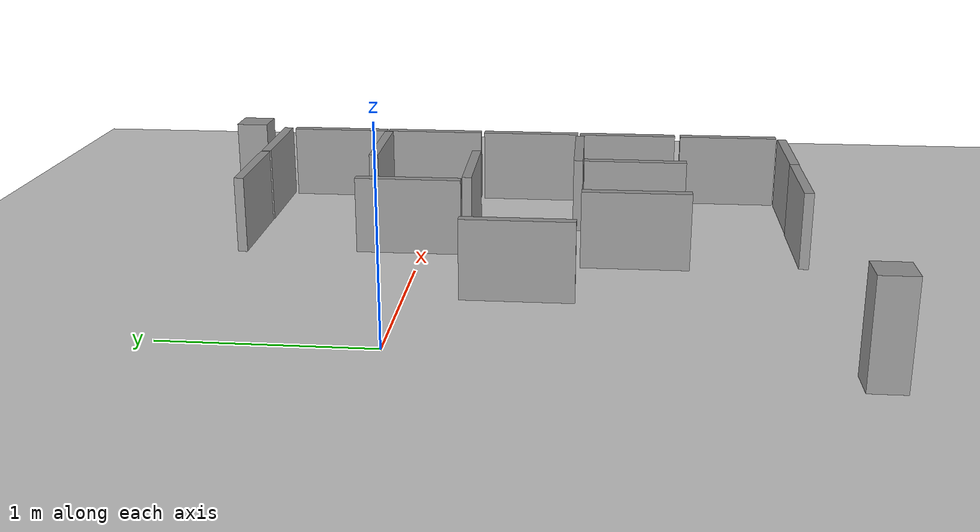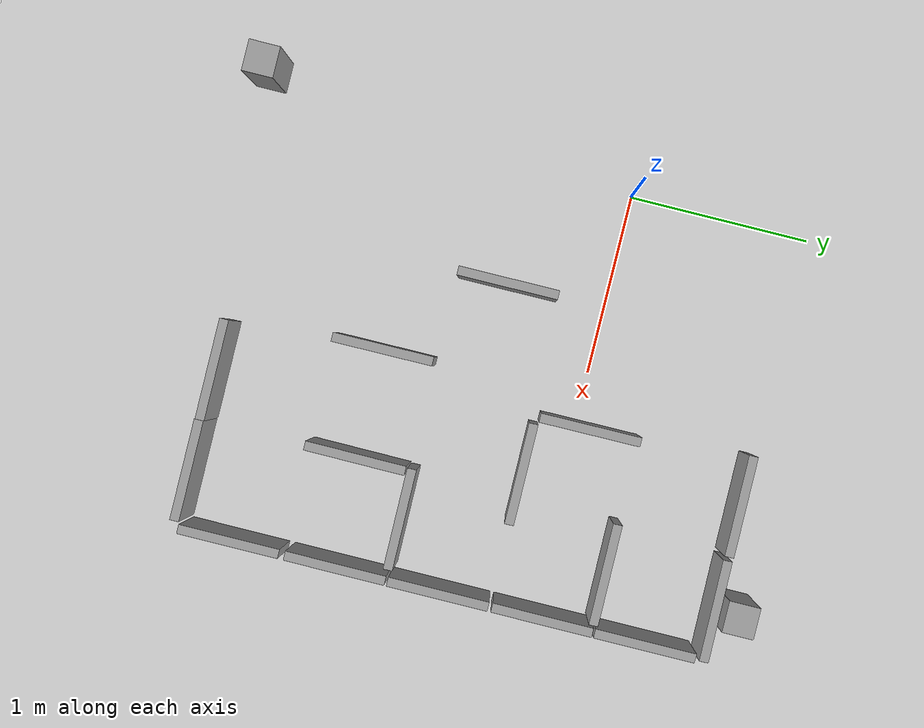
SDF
<sdf version="1.6">
 <world name="default">
  <model name="ground_plane">
   <static>1</static>
   <link name="link">
    <collision name="collision">
     <geometry><plane><normal>0 0 1</normal><size>100 100</size></plane></geometry>
     <surface>
      <contact><collide_bitmask>65535</collide_bitmask></contact>
      <friction><ode><mu>100</mu><mu2>50</mu2></ode></friction>
     </surface>
    </collision>
    <visual name="visual">
     <cast_shadows>0</cast_shadows>
     <geometry><plane><normal>0 0 1</normal><size>100 100</size></plane></geometry>
     <material>
      <script><uri>file://media/materials/scripts/gazebo.material</uri><name>Gazebo/Grey</name></script>
     </material>
    </visual>
   </link>
  </model>
  <model name="Maze_unit_clone_5_clone_1">
   <link name="link">
    <inertial>
     <mass>1</mass>
     <inertia>
      <ixx>0.166667</ixx>
      <ixy>0</ixy>
      <ixz>0</ixz>
      <iyy>0.166667</iyy>
      <iyz>0</iyz>
      <izz>0.166667</izz>
     </inertia>
    </inertial>
    <pose>-0.463146 -0.530916 -0 0 -0 0</pose>
    <visual name="visual">
     <geometry><box><size>0.05 0.55 0.4</size></box></geometry>
     <material>
      <script><name>Gazebo/Grey</name><uri>file://media/materials/scripts/gazebo.material</uri></script>
      <shader type="vertex"><normal_map>__default__</normal_map></shader>
      <ambient>0.3 0.3 0.3 1</ambient>
      <diffuse>0.7 0.7 0.7 1</diffuse>
      <specular>0.01 0.01 0.01 1</specular>
      <emissive>0 0 0 1</emissive>
     </material>
    </visual>
    <collision name="collision">
     <geometry><box><size>0.05 0.55 0.4</size></box></geometry>
     <surface>
      <friction>
       <ode><mu>1</mu><mu2>1</mu2><fdir1>0 0 0</fdir1><slip1>0</slip1><slip2>0</slip2></ode>
       <torsional>
        <coefficient>1</coefficient>
        <patch_radius>0</patch_radius>
        <surface_radius>0</surface_radius>
        <use_patch_radius>1</use_patch_radius>
        <ode><slip>0</slip></ode>
       </torsional>
      </friction>
      <bounce><restitution_coefficient>0</restitution_coefficient><threshold>1e+06</threshold></bounce>
      <contact>
       <collide_without_contact>0</collide_without_contact>
       <collide_without_contact_bitmask>1</collide_without_contact_bitmask>
       <collide_bitmask>1</collide_bitmask>
       <ode>
        <soft_cfm>0</soft_cfm>
        <soft_erp>0.2</soft_erp>
        <kp>1e+13</kp>
        <kd>1</kd>
        <max_vel>0.01</max_vel>
        <min_depth>0</min_depth>
       </ode>
       <bullet>
        <split_impulse>1</split_impulse>
        <split_impulse_penetration_threshold>-0.01</split_impulse_penetration_threshold>
        <soft_cfm>0</soft_cfm>
        <soft_erp>0.2</soft_erp>
        <kp>1e+13</kp>
        <kd>1</kd>
       </bullet>
      </contact>
     </surface>
    </collision>
   </link>
   <static>1</static>
   <pose>0.932907 -1.48862 0.199997 -0 6e-06 1.57653</pose>
  </model>
  <model name="Maze_unit_clone_5_clone_2">
   <link name="link">
    <inertial>
     <mass>1</mass>
     <inertia>
      <ixx>0.166667</ixx>
      <ixy>0</ixy>
      <ixz>0</ixz>
      <iyy>0.166667</iyy>
      <iyz>0</iyz>
      <izz>0.166667</izz>
     </inertia>
    </inertial>
    <pose>-0.463146 -0.530916 -0 0 -0 0</pose>
    <visual name="visual">
     <geometry><box><size>0.05 0.55 0.4</size></box></geometry>
     <material>
      <script><name>Gazebo/Grey</name><uri>file://media/materials/scripts/gazebo.material</uri></script>
      <shader type="vertex"><normal_map>__default__</normal_map></shader>
      <ambient>0.3 0.3 0.3 1</ambient>
      <diffuse>0.7 0.7 0.7 1</diffuse>
      <specular>0.01 0.01 0.01 1</specular>
      <emissive>0 0 0 1</emissive>
     </material>
    </visual>
    <collision name="collision">
     <geometry><box><size>0.05 0.55 0.4</size></box></geometry>
     <surface>
      <friction>
       <ode><mu>1</mu><mu2>1</mu2><fdir1>0 0 0</fdir1><slip1>0</slip1><slip2>0</slip2></ode>
       <torsional>
        <coefficient>1</coefficient>
        <patch_radius>0</patch_radius>
        <surface_radius>0</surface_radius>
        <use_patch_radius>1</use_patch_radius>
        <ode><slip>0</slip></ode>
       </torsional>
      </friction>
      <bounce><restitution_coefficient>0</restitution_coefficient><threshold>1e+06</threshold></bounce>
      <contact>
       <collide_without_contact>0</collide_without_contact>
       <collide_without_contact_bitmask>1</collide_without_contact_bitmask>
       <collide_bitmask>1</collide_bitmask>
       <ode>
        <soft_cfm>0</soft_cfm>
        <soft_erp>0.2</soft_erp>
        <kp>1e+13</kp>
        <kd>1</kd>
        <max_vel>0.01</max_vel>
        <min_depth>0</min_depth>
       </ode>
       <bullet>
        <split_impulse>1</split_impulse>
        <split_impulse_penetration_threshold>-0.01</split_impulse_penetration_threshold>
        <soft_cfm>0</soft_cfm>
        <soft_erp>0.2</soft_erp>
        <kp>1e+13</kp>
        <kd>1</kd>
       </bullet>
      </contact>
     </surface>
    </collision>
   </link>
   <static>1</static>
   <pose>1.48286 -1.48866 0.2 0 -0 1.57668</pose>
  </model>
  <model name="Maze_unit_clone_5_clone_6">
   <link name="link">
    <inertial>
     <mass>1</mass>
     <inertia>
      <ixx>0.166667</ixx>
      <ixy>0</ixy>
      <ixz>0</ixz>
      <iyy>0.166667</iyy>
      <iyz>0</iyz>
      <izz>0.166667</izz>
     </inertia>
    </inertial>
    <pose>-0.463146 -0.530916 -0 0 -0 0</pose>
    <visual name="visual">
     <geometry><box><size>0.05 0.55 0.4</size></box></geometry>
     <material>
      <script><name>Gazebo/Grey</name><uri>file://media/materials/scripts/gazebo.material</uri></script>
      <shader type="vertex"><normal_map>__default__</normal_map></shader>
      <ambient>0.3 0.3 0.3 1</ambient>
      <diffuse>0.7 0.7 0.7 1</diffuse>
      <specular>0.01 0.01 0.01 1</specular>
      <emissive>0 0 0 1</emissive>
     </material>
    </visual>
    <collision name="collision">
     <geometry><box><size>0.05 0.55 0.4</size></box></geometry>
     <surface>
      <friction>
       <ode><mu>1</mu><mu2>1</mu2><fdir1>0 0 0</fdir1><slip1>0</slip1><slip2>0</slip2></ode>
       <torsional>
        <coefficient>1</coefficient>
        <patch_radius>0</patch_radius>
        <surface_radius>0</surface_radius>
        <use_patch_radius>1</use_patch_radius>
        <ode><slip>0</slip></ode>
       </torsional>
      </friction>
      <bounce><restitution_coefficient>0</restitution_coefficient><threshold>1e+06</threshold></bounce>
      <contact>
       <collide_without_contact>0</collide_without_contact>
       <collide_without_contact_bitmask>1</collide_without_contact_bitmask>
       <collide_bitmask>1</collide_bitmask>
       <ode>
        <soft_cfm>0</soft_cfm>
        <soft_erp>0.2</soft_erp>
        <kp>1e+13</kp>
        <kd>1</kd>
        <max_vel>0.01</max_vel>
        <min_depth>0</min_depth>
       </ode>
       <bullet>
        <split_impulse>1</split_impulse>
        <split_impulse_penetration_threshold>-0.01</split_impulse_penetration_threshold>
        <soft_cfm>0</soft_cfm>
        <soft_erp>0.2</soft_erp>
        <kp>1e+13</kp>
        <kd>1</kd>
       </bullet>
      </contact>
     </surface>
    </collision>
   </link>
   <static>1</static>
   <pose>0.956215 1.40639 0.199993 -9e-06 -0 1.5766</pose>
  </model>
  <model name="Maze_unit_clone_5_clone_7">
   <link name="link">
    <inertial>
     <mass>1</mass>
     <inertia>
      <ixx>0.166667</ixx>
      <ixy>0</ixy>
      <ixz>0</ixz>
      <iyy>0.166667</iyy>
      <iyz>0</iyz>
      <izz>0.166667</izz>
     </inertia>
    </inertial>
    <pose>-0.463146 -0.530916 -0 0 -0 0</pose>
    <visual name="visual">
     <geometry><box><size>0.05 0.55 0.4</size></box></geometry>
     <material>
      <script><name>Gazebo/Grey</name><uri>file://media/materials/scripts/gazebo.material</uri></script>
      <shader type="vertex"><normal_map>__default__</normal_map></shader>
      <ambient>0.3 0.3 0.3 1</ambient>
      <diffuse>0.7 0.7 0.7 1</diffuse>
      <specular>0.01 0.01 0.01 1</specular>
      <emissive>0 0 0 1</emissive>
     </material>
    </visual>
    <collision name="collision">
     <geometry><box><size>0.05 0.55 0.4</size></box></geometry>
     <surface>
      <friction>
       <ode><mu>1</mu><mu2>1</mu2><fdir1>0 0 0</fdir1><slip1>0</slip1><slip2>0</slip2></ode>
       <torsional>
        <coefficient>1</coefficient>
        <patch_radius>0</patch_radius>
        <surface_radius>0</surface_radius>
        <use_patch_radius>1</use_patch_radius>
        <ode><slip>0</slip></ode>
       </torsional>
      </friction>
      <bounce><restitution_coefficient>0</restitution_coefficient><threshold>1e+06</threshold></bounce>
      <contact>
       <collide_without_contact>0</collide_without_contact>
       <collide_without_contact_bitmask>1</collide_without_contact_bitmask>
       <collide_bitmask>1</collide_bitmask>
       <ode>
        <soft_cfm>0</soft_cfm>
        <soft_erp>0.2</soft_erp>
        <kp>1e+13</kp>
        <kd>1</kd>
        <max_vel>0.01</max_vel>
        <min_depth>0</min_depth>
       </ode>
       <bullet>
        <split_impulse>1</split_impulse>
        <split_impulse_penetration_threshold>-0.01</split_impulse_penetration_threshold>
        <soft_cfm>0</soft_cfm>
        <soft_erp>0.2</soft_erp>
        <kp>1e+13</kp>
        <kd>1</kd>
       </bullet>
      </contact>
     </surface>
    </collision>
   </link>
   <static>1</static>
   <pose>1.52479 1.40639 0.199999 -1e-06 0 1.58128</pose>
  </model>
  <model name="Maze_unit_clone_5_clone_11">
   <link name="link">
    <inertial>
     <mass>1</mass>
     <inertia>
      <ixx>0.166667</ixx>
      <ixy>0</ixy>
      <ixz>0</ixz>
      <iyy>0.166667</iyy>
      <iyz>0</iyz>
      <izz>0.166667</izz>
     </inertia>
    </inertial>
    <pose>-0.463146 -0.530916 -0 0 -0 0</pose>
    <visual name="visual">
     <geometry><box><size>0.05 0.55 0.4</size></box></geometry>
     <material>
      <script><name>Gazebo/Grey</name><uri>file://media/materials/scripts/gazebo.material</uri></script>
      <shader type="vertex"><normal_map>__default__</normal_map></shader>
      <ambient>0.3 0.3 0.3 1</ambient>
      <diffuse>0.7 0.7 0.7 1</diffuse>
      <specular>0.01 0.01 0.01 1</specular>
      <emissive>0 0 0 1</emissive>
     </material>
    </visual>
    <collision name="collision">
     <geometry><box><size>0.05 0.55 0.4</size></box></geometry>
     <surface>
      <friction>
       <ode><mu>1</mu><mu2>1</mu2><fdir1>0 0 0</fdir1><slip1>0</slip1><slip2>0</slip2></ode>
       <torsional>
        <coefficient>1</coefficient>
        <patch_radius>0</patch_radius>
        <surface_radius>0</surface_radius>
        <use_patch_radius>1</use_patch_radius>
        <ode><slip>0</slip></ode>
       </torsional>
      </friction>
      <bounce><restitution_coefficient>0</restitution_coefficient><threshold>1e+06</threshold></bounce>
      <contact>
       <collide_without_contact>0</collide_without_contact>
       <collide_without_contact_bitmask>1</collide_without_contact_bitmask>
       <collide_bitmask>1</collide_bitmask>
       <ode>
        <soft_cfm>0</soft_cfm>
        <soft_erp>0.2</soft_erp>
        <kp>1e+13</kp>
        <kd>1</kd>
        <max_vel>0.01</max_vel>
        <min_depth>0</min_depth>
       </ode>
       <bullet>
        <split_impulse>1</split_impulse>
        <split_impulse_penetration_threshold>-0.01</split_impulse_penetration_threshold>
        <soft_cfm>0</soft_cfm>
        <soft_erp>0.2</soft_erp>
        <kp>1e+13</kp>
        <kd>1</kd>
       </bullet>
      </contact>
     </surface>
    </collision>
   </link>
   <static>1</static>
   <pose>1.07258 0.234717 0.2 -0 1e-06 1.57659</pose>
  </model>
  <model name="Maze_unit_clone_5_clone_13">
   <link name="link">
    <inertial>
     <mass>1</mass>
     <inertia>
      <ixx>0.166667</ixx>
      <ixy>0</ixy>
      <ixz>0</ixz>
      <iyy>0.166667</iyy>
      <iyz>0</iyz>
      <izz>0.166667</izz>
     </inertia>
    </inertial>
    <pose>-0.463146 -0.530916 -0 0 -0 0</pose>
    <visual name="visual">
     <geometry><box><size>0.05 0.55 0.4</size></box></geometry>
     <material>
      <script><name>Gazebo/Grey</name><uri>file://media/materials/scripts/gazebo.material</uri></script>
      <shader type="vertex"><normal_map>__default__</normal_map></shader>
      <ambient>0.3 0.3 0.3 1</ambient>
      <diffuse>0.7 0.7 0.7 1</diffuse>
      <specular>0.01 0.01 0.01 1</specular>
      <emissive>0 0 0 1</emissive>
     </material>
    </visual>
    <collision name="collision">
     <geometry><box><size>0.05 0.55 0.4</size></box></geometry>
     <surface>
      <friction>
       <ode><mu>1</mu><mu2>1</mu2><fdir1>0 0 0</fdir1><slip1>0</slip1><slip2>0</slip2></ode>
       <torsional>
        <coefficient>1</coefficient>
        <patch_radius>0</patch_radius>
        <surface_radius>0</surface_radius>
        <use_patch_radius>1</use_patch_radius>
        <ode><slip>0</slip></ode>
       </torsional>
      </friction>
      <bounce><restitution_coefficient>0</restitution_coefficient><threshold>1e+06</threshold></bounce>
      <contact>
       <collide_without_contact>0</collide_without_contact>
       <collide_without_contact_bitmask>1</collide_without_contact_bitmask>
       <collide_bitmask>1</collide_bitmask>
       <ode>
        <soft_cfm>0</soft_cfm>
        <soft_erp>0.2</soft_erp>
        <kp>1e+13</kp>
        <kd>1</kd>
        <max_vel>0.01</max_vel>
        <min_depth>0</min_depth>
       </ode>
       <bullet>
        <split_impulse>1</split_impulse>
        <split_impulse_penetration_threshold>-0.01</split_impulse_penetration_threshold>
        <soft_cfm>0</soft_cfm>
        <soft_erp>0.2</soft_erp>
        <kp>1e+13</kp>
        <kd>1</kd>
       </bullet>
      </contact>
     </surface>
    </collision>
   </link>
   <static>1</static>
   <pose>1.45977 -0.33322 0.200004 0 -9e-06 1.58022</pose>
  </model>
  <model name="Maze_unit_clone_5_clone_14">
   <link name="link">
    <inertial>
     <mass>1</mass>
     <inertia>
      <ixx>0.166667</ixx>
      <ixy>0</ixy>
      <ixz>0</ixz>
      <iyy>0.166667</iyy>
      <iyz>0</iyz>
      <izz>0.166667</izz>
     </inertia>
    </inertial>
    <pose>-0.463146 -0.530916 -0 0 -0 0</pose>
    <visual name="visual">
     <geometry><box><size>0.05 0.55 0.4</size></box></geometry>
     <material>
      <script><name>Gazebo/Grey</name><uri>file://media/materials/scripts/gazebo.material</uri></script>
      <shader type="vertex"><normal_map>__default__</normal_map></shader>
      <ambient>0.3 0.3 0.3 1</ambient>
      <diffuse>0.7 0.7 0.7 1</diffuse>
      <specular>0.01 0.01 0.01 1</specular>
      <emissive>0 0 0 1</emissive>
     </material>
    </visual>
    <collision name="collision">
     <geometry><box><size>0.05 0.55 0.4</size></box></geometry>
     <surface>
      <friction>
       <ode><mu>1</mu><mu2>1</mu2><fdir1>0 0 0</fdir1><slip1>0</slip1><slip2>0</slip2></ode>
       <torsional>
        <coefficient>1</coefficient>
        <patch_radius>0</patch_radius>
        <surface_radius>0</surface_radius>
        <use_patch_radius>1</use_patch_radius>
        <ode><slip>0</slip></ode>
       </torsional>
      </friction>
      <bounce><restitution_coefficient>0</restitution_coefficient><threshold>1e+06</threshold></bounce>
      <contact>
       <collide_without_contact>0</collide_without_contact>
       <collide_without_contact_bitmask>1</collide_without_contact_bitmask>
       <collide_bitmask>1</collide_bitmask>
       <ode>
        <soft_cfm>0</soft_cfm>
        <soft_erp>0.2</soft_erp>
        <kp>1e+13</kp>
        <kd>1</kd>
        <max_vel>0.01</max_vel>
        <min_depth>0</min_depth>
       </ode>
       <bullet>
        <split_impulse>1</split_impulse>
        <split_impulse_penetration_threshold>-0.01</split_impulse_penetration_threshold>
        <soft_cfm>0</soft_cfm>
        <soft_erp>0.2</soft_erp>
        <kp>1e+13</kp>
        <kd>1</kd>
       </bullet>
      </contact>
     </surface>
    </collision>
   </link>
   <static>1</static>
   <pose>1.48196 0.796241 0.199993 -9e-06 -0 1.5779</pose>
  </model>
  <model name="Maze_unit_clone_2_clone">
   <link name="link">
    <inertial>
     <mass>1</mass>
     <inertia>
      <ixx>0.166667</ixx>
      <ixy>0</ixy>
      <ixz>0</ixz>
      <iyy>0.166667</iyy>
      <iyz>0</iyz>
      <izz>0.166667</izz>
     </inertia>
    </inertial>
    <pose>-0.463146 -0.530916 -0 0 -0 0</pose>
    <visual name="visual">
     <geometry><box><size>0.05 0.55 0.4</size></box></geometry>
     <material>
      <script><name>Gazebo/Grey</name><uri>file://media/materials/scripts/gazebo.material</uri></script>
      <shader type="vertex"><normal_map>__default__</normal_map></shader>
      <ambient>0.3 0.3 0.3 1</ambient>
      <diffuse>0.7 0.7 0.7 1</diffuse>
      <specular>0.01 0.01 0.01 1</specular>
      <emissive>0 0 0 1</emissive>
     </material>
    </visual>
    <collision name="collision">
     <geometry><box><size>0.05 0.55 0.4</size></box></geometry>
     <surface>
      <friction>
       <ode><mu>1</mu><mu2>1</mu2><fdir1>0 0 0</fdir1><slip1>0</slip1><slip2>0</slip2></ode>
       <torsional>
        <coefficient>1</coefficient>
        <patch_radius>0</patch_radius>
        <surface_radius>0</surface_radius>
        <use_patch_radius>1</use_patch_radius>
        <ode><slip>0</slip></ode>
       </torsional>
      </friction>
      <bounce><restitution_coefficient>0</restitution_coefficient><threshold>1e+06</threshold></bounce>
      <contact>
       <collide_without_contact>0</collide_without_contact>
       <collide_without_contact_bitmask>1</collide_without_contact_bitmask>
       <collide_bitmask>1</collide_bitmask>
       <ode>
        <soft_cfm>0</soft_cfm>
        <soft_erp>0.2</soft_erp>
        <kp>1e+13</kp>
        <kd>1</kd>
        <max_vel>0.01</max_vel>
        <min_depth>0</min_depth>
       </ode>
       <bullet>
        <split_impulse>1</split_impulse>
        <split_impulse_penetration_threshold>-0.01</split_impulse_penetration_threshold>
        <soft_cfm>0</soft_cfm>
        <soft_erp>0.2</soft_erp>
        <kp>1e+13</kp>
        <kd>1</kd>
       </bullet>
      </contact>
     </surface>
    </collision>
   </link>
   <static>1</static>
   <pose>1.10148 -0.006837 0.2 0 1e-06 0.002808</pose>
  </model>
  <model name="Maze_unit_clone_2_clone_0">
   <link name="link">
    <inertial>
     <mass>1</mass>
     <inertia>
      <ixx>0.166667</ixx>
      <ixy>0</ixy>
      <ixz>0</ixz>
      <iyy>0.166667</iyy>
      <iyz>0</iyz>
      <izz>0.166667</izz>
     </inertia>
    </inertial>
    <pose>-0.463146 -0.530916 -0 0 -0 0</pose>
    <visual name="visual">
     <geometry><box><size>0.05 0.55 0.4</size></box></geometry>
     <material>
      <script><name>Gazebo/Grey</name><uri>file://media/materials/scripts/gazebo.material</uri></script>
      <shader type="vertex"><normal_map>__default__</normal_map></shader>
      <ambient>0.3 0.3 0.3 1</ambient>
      <diffuse>0.7 0.7 0.7 1</diffuse>
      <specular>0.01 0.01 0.01 1</specular>
      <emissive>0 0 0 1</emissive>
     </material>
    </visual>
    <collision name="collision">
     <geometry><box><size>0.05 0.55 0.4</size></box></geometry>
     <surface>
      <friction>
       <ode><mu>1</mu><mu2>1</mu2><fdir1>0 0 0</fdir1><slip1>0</slip1><slip2>0</slip2></ode>
       <torsional>
        <coefficient>1</coefficient>
        <patch_radius>0</patch_radius>
        <surface_radius>0</surface_radius>
        <use_patch_radius>1</use_patch_radius>
        <ode><slip>0</slip></ode>
       </torsional>
      </friction>
      <bounce><restitution_coefficient>0</restitution_coefficient><threshold>1e+06</threshold></bounce>
      <contact>
       <collide_without_contact>0</collide_without_contact>
       <collide_without_contact_bitmask>1</collide_without_contact_bitmask>
       <collide_bitmask>1</collide_bitmask>
       <ode>
        <soft_cfm>0</soft_cfm>
        <soft_erp>0.2</soft_erp>
        <kp>1e+13</kp>
        <kd>1</kd>
        <max_vel>0.01</max_vel>
        <min_depth>0</min_depth>
       </ode>
       <bullet>
        <split_impulse>1</split_impulse>
        <split_impulse_penetration_threshold>-0.01</split_impulse_penetration_threshold>
        <soft_cfm>0</soft_cfm>
        <soft_erp>0.2</soft_erp>
        <kp>1e+13</kp>
        <kd>1</kd>
       </bullet>
      </contact>
     </surface>
    </collision>
   </link>
   <static>1</static>
   <pose>1.60328 -0.566646 0.2 0 -0 0.004235</pose>
  </model>
  <model name="Maze_unit_clone_2_clone_1">
   <link name="link">
    <inertial>
     <mass>1</mass>
     <inertia>
      <ixx>0.166667</ixx>
      <ixy>0</ixy>
      <ixz>0</ixz>
      <iyy>0.166667</iyy>
      <iyz>0</iyz>
      <izz>0.166667</izz>
     </inertia>
    </inertial>
    <pose>-0.463146 -0.530916 -0 0 -0 0</pose>
    <visual name="visual">
     <geometry><box><size>0.05 0.55 0.4</size></box></geometry>
     <material>
      <script><name>Gazebo/Grey</name><uri>file://media/materials/scripts/gazebo.material</uri></script>
      <shader type="vertex"><normal_map>__default__</normal_map></shader>
      <ambient>0.3 0.3 0.3 1</ambient>
      <diffuse>0.7 0.7 0.7 1</diffuse>
      <specular>0.01 0.01 0.01 1</specular>
      <emissive>0 0 0 1</emissive>
     </material>
    </visual>
    <collision name="collision">
     <geometry><box><size>0.05 0.55 0.4</size></box></geometry>
     <surface>
      <friction>
       <ode><mu>1</mu><mu2>1</mu2><fdir1>0 0 0</fdir1><slip1>0</slip1><slip2>0</slip2></ode>
       <torsional>
        <coefficient>1</coefficient>
        <patch_radius>0</patch_radius>
        <surface_radius>0</surface_radius>
        <use_patch_radius>1</use_patch_radius>
        <ode><slip>0</slip></ode>
       </torsional>
      </friction>
      <bounce><restitution_coefficient>0</restitution_coefficient><threshold>1e+06</threshold></bounce>
      <contact>
       <collide_without_contact>0</collide_without_contact>
       <collide_without_contact_bitmask>1</collide_without_contact_bitmask>
       <collide_bitmask>1</collide_bitmask>
       <ode>
        <soft_cfm>0</soft_cfm>
        <soft_erp>0.2</soft_erp>
        <kp>1e+13</kp>
        <kd>1</kd>
        <max_vel>0.01</max_vel>
        <min_depth>0</min_depth>
       </ode>
       <bullet>
        <split_impulse>1</split_impulse>
        <split_impulse_penetration_threshold>-0.01</split_impulse_penetration_threshold>
        <soft_cfm>0</soft_cfm>
        <soft_erp>0.2</soft_erp>
        <kp>1e+13</kp>
        <kd>1</kd>
       </bullet>
      </contact>
     </surface>
    </collision>
   </link>
   <static>1</static>
   <pose>2.20322 -0.571407 0.2 0 0 -0.004099</pose>
  </model>
  <model name="Maze_unit_clone_2_clone_2">
   <link name="link">
    <inertial>
     <mass>1</mass>
     <inertia>
      <ixx>0.166667</ixx>
      <ixy>0</ixy>
      <ixz>0</ixz>
      <iyy>0.166667</iyy>
      <iyz>0</iyz>
      <izz>0.166667</izz>
     </inertia>
    </inertial>
    <pose>-0.463146 -0.530916 -0 0 -0 0</pose>
    <visual name="visual">
     <geometry><box><size>0.05 0.55 0.4</size></box></geometry>
     <material>
      <script><name>Gazebo/Grey</name><uri>file://media/materials/scripts/gazebo.material</uri></script>
      <shader type="vertex"><normal_map>__default__</normal_map></shader>
      <ambient>0.3 0.3 0.3 1</ambient>
      <diffuse>0.7 0.7 0.7 1</diffuse>
      <specular>0.01 0.01 0.01 1</specular>
      <emissive>0 0 0 1</emissive>
     </material>
    </visual>
    <collision name="collision">
     <geometry><box><size>0.05 0.55 0.4</size></box></geometry>
     <surface>
      <friction>
       <ode><mu>1</mu><mu2>1</mu2><fdir1>0 0 0</fdir1><slip1>0</slip1><slip2>0</slip2></ode>
       <torsional>
        <coefficient>1</coefficient>
        <patch_radius>0</patch_radius>
        <surface_radius>0</surface_radius>
        <use_patch_radius>1</use_patch_radius>
        <ode><slip>0</slip></ode>
       </torsional>
      </friction>
      <bounce><restitution_coefficient>0</restitution_coefficient><threshold>1e+06</threshold></bounce>
      <contact>
       <collide_without_contact>0</collide_without_contact>
       <collide_without_contact_bitmask>1</collide_without_contact_bitmask>
       <collide_bitmask>1</collide_bitmask>
       <ode>
        <soft_cfm>0</soft_cfm>
        <soft_erp>0.2</soft_erp>
        <kp>1e+13</kp>
        <kd>1</kd>
        <max_vel>0.01</max_vel>
        <min_depth>0</min_depth>
       </ode>
       <bullet>
        <split_impulse>1</split_impulse>
        <split_impulse_penetration_threshold>-0.01</split_impulse_penetration_threshold>
        <soft_cfm>0</soft_cfm>
        <soft_erp>0.2</soft_erp>
        <kp>1e+13</kp>
        <kd>1</kd>
       </bullet>
      </contact>
     </surface>
    </collision>
   </link>
   <static>1</static>
   <pose>1.75089 0.606076 0.2 1e-06 1e-06 0.004676</pose>
  </model>
  <model name="Maze_unit_clone_2_clone_0_clone">
   <link name="link">
    <inertial>
     <mass>1</mass>
     <inertia>
      <ixx>0.166667</ixx>
      <ixy>0</ixy>
      <ixz>0</ixz>
      <iyy>0.166667</iyy>
      <iyz>0</iyz>
      <izz>0.166667</izz>
     </inertia>
    </inertial>
    <pose>-0.463146 -0.530916 -0 0 -0 0</pose>
    <visual name="visual">
     <geometry><box><size>0.05 0.55 0.4</size></box></geometry>
     <material>
      <script><name>Gazebo/Grey</name><uri>file://media/materials/scripts/gazebo.material</uri></script>
      <shader type="vertex"><normal_map>__default__</normal_map></shader>
      <ambient>0.3 0.3 0.3 1</ambient>
      <diffuse>0.7 0.7 0.7 1</diffuse>
      <specular>0.01 0.01 0.01 1</specular>
      <emissive>0 0 0 1</emissive>
     </material>
    </visual>
    <collision name="collision">
     <geometry><box><size>0.05 0.55 0.4</size></box></geometry>
     <surface>
      <friction>
       <ode><mu>1</mu><mu2>1</mu2><fdir1>0 0 0</fdir1><slip1>0</slip1><slip2>0</slip2></ode>
       <torsional>
        <coefficient>1</coefficient>
        <patch_radius>0</patch_radius>
        <surface_radius>0</surface_radius>
        <use_patch_radius>1</use_patch_radius>
        <ode><slip>0</slip></ode>
       </torsional>
      </friction>
      <bounce><restitution_coefficient>0</restitution_coefficient><threshold>1e+06</threshold></bounce>
      <contact>
       <collide_without_contact>0</collide_without_contact>
       <collide_without_contact_bitmask>1</collide_without_contact_bitmask>
       <collide_bitmask>1</collide_bitmask>
       <ode>
        <soft_cfm>0</soft_cfm>
        <soft_erp>0.2</soft_erp>
        <kp>1e+13</kp>
        <kd>1</kd>
        <max_vel>0.01</max_vel>
        <min_depth>0</min_depth>
       </ode>
       <bullet>
        <split_impulse>1</split_impulse>
        <split_impulse_penetration_threshold>-0.01</split_impulse_penetration_threshold>
        <soft_cfm>0</soft_cfm>
        <soft_erp>0.2</soft_erp>
        <kp>1e+13</kp>
        <kd>1</kd>
       </bullet>
      </contact>
     </surface>
    </collision>
   </link>
   <static>1</static>
   <pose>2.79175 -1.11242 0.2 0 -0 0.0006</pose>
  </model>
  <model name="Maze_unit_clone_2_clone_0_clone_0">
   <link name="link">
    <inertial>
     <mass>1</mass>
     <inertia>
      <ixx>0.166667</ixx>
      <ixy>0</ixy>
      <ixz>0</ixz>
      <iyy>0.166667</iyy>
      <iyz>0</iyz>
      <izz>0.166667</izz>
     </inertia>
    </inertial>
    <pose>-0.463146 -0.530916 -0 0 -0 0</pose>
    <visual name="visual">
     <geometry><box><size>0.05 0.55 0.4</size></box></geometry>
     <material>
      <script><name>Gazebo/Grey</name><uri>file://media/materials/scripts/gazebo.material</uri></script>
      <shader type="vertex"><normal_map>__default__</normal_map></shader>
      <ambient>0.3 0.3 0.3 1</ambient>
      <diffuse>0.7 0.7 0.7 1</diffuse>
      <specular>0.01 0.01 0.01 1</specular>
      <emissive>0 0 0 1</emissive>
     </material>
    </visual>
    <collision name="collision">
     <geometry><box><size>0.05 0.55 0.4</size></box></geometry>
     <surface>
      <friction>
       <ode><mu>1</mu><mu2>1</mu2><fdir1>0 0 0</fdir1><slip1>0</slip1><slip2>0</slip2></ode>
       <torsional>
        <coefficient>1</coefficient>
        <patch_radius>0</patch_radius>
        <surface_radius>0</surface_radius>
        <use_patch_radius>1</use_patch_radius>
        <ode><slip>0</slip></ode>
       </torsional>
      </friction>
      <bounce><restitution_coefficient>0</restitution_coefficient><threshold>1e+06</threshold></bounce>
      <contact>
       <collide_without_contact>0</collide_without_contact>
       <collide_without_contact_bitmask>1</collide_without_contact_bitmask>
       <collide_bitmask>1</collide_bitmask>
       <ode>
        <soft_cfm>0</soft_cfm>
        <soft_erp>0.2</soft_erp>
        <kp>1e+13</kp>
        <kd>1</kd>
        <max_vel>0.01</max_vel>
        <min_depth>0</min_depth>
       </ode>
       <bullet>
        <split_impulse>1</split_impulse>
        <split_impulse_penetration_threshold>-0.01</split_impulse_penetration_threshold>
        <soft_cfm>0</soft_cfm>
        <soft_erp>0.2</soft_erp>
        <kp>1e+13</kp>
        <kd>1</kd>
       </bullet>
      </contact>
     </surface>
    </collision>
   </link>
   <static>1</static>
   <pose>2.79186 -0.531425 0.200001 1e-06 -1e-06 8.4e-05</pose>
  </model>
  <model name="Maze_unit_clone_2_clone_0_clone_1">
   <link name="link">
    <inertial>
     <mass>1</mass>
     <inertia>
      <ixx>0.166667</ixx>
      <ixy>0</ixy>
      <ixz>0</ixz>
      <iyy>0.166667</iyy>
      <iyz>0</iyz>
      <izz>0.166667</izz>
     </inertia>
    </inertial>
    <pose>-0.463146 -0.530916 -0 0 -0 0</pose>
    <visual name="visual">
     <geometry><box><size>0.05 0.55 0.4</size></box></geometry>
     <material>
      <script><name>Gazebo/Grey</name><uri>file://media/materials/scripts/gazebo.material</uri></script>
      <shader type="vertex"><normal_map>__default__</normal_map></shader>
      <ambient>0.3 0.3 0.3 1</ambient>
      <diffuse>0.7 0.7 0.7 1</diffuse>
      <specular>0.01 0.01 0.01 1</specular>
      <emissive>0 0 0 1</emissive>
     </material>
    </visual>
    <collision name="collision">
     <geometry><box><size>0.05 0.55 0.4</size></box></geometry>
     <surface>
      <friction>
       <ode><mu>1</mu><mu2>1</mu2><fdir1>0 0 0</fdir1><slip1>0</slip1><slip2>0</slip2></ode>
       <torsional>
        <coefficient>1</coefficient>
        <patch_radius>0</patch_radius>
        <surface_radius>0</surface_radius>
        <use_patch_radius>1</use_patch_radius>
        <ode><slip>0</slip></ode>
       </torsional>
      </friction>
      <bounce><restitution_coefficient>0</restitution_coefficient><threshold>1e+06</threshold></bounce>
      <contact>
       <collide_without_contact>0</collide_without_contact>
       <collide_without_contact_bitmask>1</collide_without_contact_bitmask>
       <collide_bitmask>1</collide_bitmask>
       <ode>
        <soft_cfm>0</soft_cfm>
        <soft_erp>0.2</soft_erp>
        <kp>1e+13</kp>
        <kd>1</kd>
        <max_vel>0.01</max_vel>
        <min_depth>0</min_depth>
       </ode>
       <bullet>
        <split_impulse>1</split_impulse>
        <split_impulse_penetration_threshold>-0.01</split_impulse_penetration_threshold>
        <soft_cfm>0</soft_cfm>
        <soft_erp>0.2</soft_erp>
        <kp>1e+13</kp>
        <kd>1</kd>
       </bullet>
      </contact>
     </surface>
    </collision>
   </link>
   <static>1</static>
   <pose>2.79275 0.030298 0.2 0 0 -0.000181</pose>
  </model>
  <model name="Maze_unit_clone_2_clone_0_clone_2">
   <link name="link">
    <inertial>
     <mass>1</mass>
     <inertia>
      <ixx>0.166667</ixx>
      <ixy>0</ixy>
      <ixz>0</ixz>
      <iyy>0.166667</iyy>
      <iyz>0</iyz>
      <izz>0.166667</izz>
     </inertia>
    </inertial>
    <pose>-0.463146 -0.530916 -0 0 -0 0</pose>
    <visual name="visual">
     <geometry><box><size>0.05 0.55 0.4</size></box></geometry>
     <material>
      <script><name>Gazebo/Grey</name><uri>file://media/materials/scripts/gazebo.material</uri></script>
      <shader type="vertex"><normal_map>__default__</normal_map></shader>
      <ambient>0.3 0.3 0.3 1</ambient>
      <diffuse>0.7 0.7 0.7 1</diffuse>
      <specular>0.01 0.01 0.01 1</specular>
      <emissive>0 0 0 1</emissive>
     </material>
    </visual>
    <collision name="collision">
     <geometry><box><size>0.05 0.55 0.4</size></box></geometry>
     <surface>
      <friction>
       <ode><mu>1</mu><mu2>1</mu2><fdir1>0 0 0</fdir1><slip1>0</slip1><slip2>0</slip2></ode>
       <torsional>
        <coefficient>1</coefficient>
        <patch_radius>0</patch_radius>
        <surface_radius>0</surface_radius>
        <use_patch_radius>1</use_patch_radius>
        <ode><slip>0</slip></ode>
       </torsional>
      </friction>
      <bounce><restitution_coefficient>0</restitution_coefficient><threshold>1e+06</threshold></bounce>
      <contact>
       <collide_without_contact>0</collide_without_contact>
       <collide_without_contact_bitmask>1</collide_without_contact_bitmask>
       <collide_bitmask>1</collide_bitmask>
       <ode>
        <soft_cfm>0</soft_cfm>
        <soft_erp>0.2</soft_erp>
        <kp>1e+13</kp>
        <kd>1</kd>
        <max_vel>0.01</max_vel>
        <min_depth>0</min_depth>
       </ode>
       <bullet>
        <split_impulse>1</split_impulse>
        <split_impulse_penetration_threshold>-0.01</split_impulse_penetration_threshold>
        <soft_cfm>0</soft_cfm>
        <soft_erp>0.2</soft_erp>
        <kp>1e+13</kp>
        <kd>1</kd>
       </bullet>
      </contact>
     </surface>
    </collision>
   </link>
   <static>1</static>
   <pose>2.7919 0.599865 0.2 0 -0 1.7e-05</pose>
  </model>
  <model name="Maze_unit_clone_2_clone_0_clone_3">
   <link name="link">
    <inertial>
     <mass>1</mass>
     <inertia>
      <ixx>0.166667</ixx>
      <ixy>0</ixy>
      <ixz>0</ixz>
      <iyy>0.166667</iyy>
      <iyz>0</iyz>
      <izz>0.166667</izz>
     </inertia>
    </inertial>
    <pose>-0.463146 -0.530916 -0 0 -0 0</pose>
    <visual name="visual">
     <geometry><box><size>0.05 0.55 0.4</size></box></geometry>
     <material>
      <script><name>Gazebo/Grey</name><uri>file://media/materials/scripts/gazebo.material</uri></script>
      <shader type="vertex"><normal_map>__default__</normal_map></shader>
      <ambient>0.3 0.3 0.3 1</ambient>
      <diffuse>0.7 0.7 0.7 1</diffuse>
      <specular>0.01 0.01 0.01 1</specular>
      <emissive>0 0 0 1</emissive>
     </material>
    </visual>
    <collision name="collision">
     <geometry><box><size>0.05 0.55 0.4</size></box></geometry>
     <surface>
      <friction>
       <ode><mu>1</mu><mu2>1</mu2><fdir1>0 0 0</fdir1><slip1>0</slip1><slip2>0</slip2></ode>
       <torsional>
        <coefficient>1</coefficient>
        <patch_radius>0</patch_radius>
        <surface_radius>0</surface_radius>
        <use_patch_radius>1</use_patch_radius>
        <ode><slip>0</slip></ode>
       </torsional>
      </friction>
      <bounce><restitution_coefficient>0</restitution_coefficient><threshold>1e+06</threshold></bounce>
      <contact>
       <collide_without_contact>0</collide_without_contact>
       <collide_without_contact_bitmask>1</collide_without_contact_bitmask>
       <collide_bitmask>1</collide_bitmask>
       <ode>
        <soft_cfm>0</soft_cfm>
        <soft_erp>0.2</soft_erp>
        <kp>1e+13</kp>
        <kd>1</kd>
        <max_vel>0.01</max_vel>
        <min_depth>0</min_depth>
       </ode>
       <bullet>
        <split_impulse>1</split_impulse>
        <split_impulse_penetration_threshold>-0.01</split_impulse_penetration_threshold>
        <soft_cfm>0</soft_cfm>
        <soft_erp>0.2</soft_erp>
        <kp>1e+13</kp>
        <kd>1</kd>
       </bullet>
      </contact>
     </surface>
    </collision>
   </link>
   <static>1</static>
   <pose>2.79194 1.16092 0.199998 0 5e-06 -3.9e-05</pose>
  </model>
  <model name="ur_base">
   <link name="link_0">
    <inertial>
     <mass>1</mass>
     <inertia>
      <ixx>0.166667</ixx>
      <ixy>0</ixy>
      <ixz>0</ixz>
      <iyy>0.166667</iyy>
      <iyz>0</iyz>
      <izz>0.166667</izz>
     </inertia>
    </inertial>
    <pose>-1.11994 -1.57555 0 0 -0 0</pose>
    <visual name="visual">
     <geometry><box><size>0.17 0.17 0.5</size></box></geometry>
     <material>
      <lighting>1</lighting>
      <script><uri>file://media/materials/scripts/gazebo.material</uri><name>Gazebo/Grey</name></script>
      <shader type="vertex"><normal_map>__default__</normal_map></shader>
      <ambient>0.3 0.3 0.3 1</ambient>
      <diffuse>0.7 0.7 0.7 1</diffuse>
      <specular>0.01 0.01 0.01 1</specular>
      <emissive>0 0 0 1</emissive>
     </material>
    </visual>
    <collision name="collision">
     <geometry><box><size>0.17 0.17 0.5</size></box></geometry>
     <surface>
      <friction>
       <ode><mu>1</mu><mu2>1</mu2><fdir1>0 0 0</fdir1><slip1>0</slip1><slip2>0</slip2></ode>
       <torsional>
        <coefficient>1</coefficient>
        <patch_radius>0</patch_radius>
        <surface_radius>0</surface_radius>
        <use_patch_radius>1</use_patch_radius>
        <ode><slip>0</slip></ode>
       </torsional>
      </friction>
      <bounce><restitution_coefficient>0</restitution_coefficient><threshold>1e+06</threshold></bounce>
      <contact>
       <collide_without_contact>0</collide_without_contact>
       <collide_without_contact_bitmask>1</collide_without_contact_bitmask>
       <collide_bitmask>1</collide_bitmask>
       <ode>
        <soft_cfm>0</soft_cfm>
        <soft_erp>0.2</soft_erp>
        <kp>1e+13</kp>
        <kd>1</kd>
        <max_vel>0.01</max_vel>
        <min_depth>0</min_depth>
       </ode>
       <bullet>
        <split_impulse>1</split_impulse>
        <split_impulse_penetration_threshold>-0.01</split_impulse_penetration_threshold>
        <soft_cfm>0</soft_cfm>
        <soft_erp>0.2</soft_erp>
        <kp>1e+13</kp>
        <kd>1</kd>
       </bullet>
      </contact>
     </surface>
    </collision>
   </link>
   <link name="link_0_clone">
    <inertial>
     <mass>1</mass>
     <inertia>
      <ixx>0.166667</ixx>
      <ixy>0</ixy>
      <ixz>0</ixz>
      <iyy>0.166667</iyy>
      <iyz>0</iyz>
      <izz>0.166667</izz>
     </inertia>
    </inertial>
    <pose>1.11994 1.57554 0 0 -0 0</pose>
    <visual name="visual">
     <geometry><box><size>0.17 0.17 0.5</size></box></geometry>
     <material>
      <lighting>1</lighting>
      <script><uri>file://media/materials/scripts/gazebo.material</uri><name>Gazebo/Grey</name></script>
      <shader type="vertex"><normal_map>__default__</normal_map></shader>
      <ambient>0.3 0.3 0.3 1</ambient>
      <diffuse>0.7 0.7 0.7 1</diffuse>
      <specular>0.01 0.01 0.01 1</specular>
      <emissive>0 0 0 1</emissive>
     </material>
    </visual>
    <collision name="collision">
     <geometry><box><size>0.17 0.17 0.5</size></box></geometry>
     <surface>
      <friction>
       <ode><mu>1</mu><mu2>1</mu2><fdir1>0 0 0</fdir1><slip1>0</slip1><slip2>0</slip2></ode>
       <torsional>
        <coefficient>1</coefficient>
        <patch_radius>0</patch_radius>
        <surface_radius>0</surface_radius>
        <use_patch_radius>1</use_patch_radius>
        <ode><slip>0</slip></ode>
       </torsional>
      </friction>
      <bounce><restitution_coefficient>0</restitution_coefficient><threshold>1e+06</threshold></bounce>
      <contact>
       <collide_without_contact>0</collide_without_contact>
       <collide_without_contact_bitmask>1</collide_without_contact_bitmask>
       <collide_bitmask>1</collide_bitmask>
       <ode>
        <soft_cfm>0</soft_cfm>
        <soft_erp>0.2</soft_erp>
        <kp>1e+13</kp>
        <kd>1</kd>
        <max_vel>0.01</max_vel>
        <min_depth>0</min_depth>
       </ode>
       <bullet>
        <split_impulse>1</split_impulse>
        <split_impulse_penetration_threshold>-0.01</split_impulse_penetration_threshold>
        <soft_cfm>0</soft_cfm>
        <soft_erp>0.2</soft_erp>
        <kp>1e+13</kp>
        <kd>1</kd>
       </bullet>
      </contact>
     </surface>
    </collision>
   </link>
   <static>0</static>
   <pose>0.94053 -0.50172 0.25 0 -0 0</pose>
  </model>
 </world>
</sdf>
